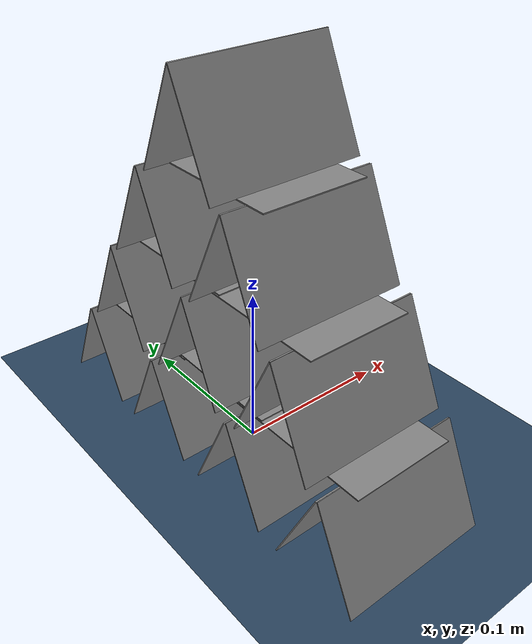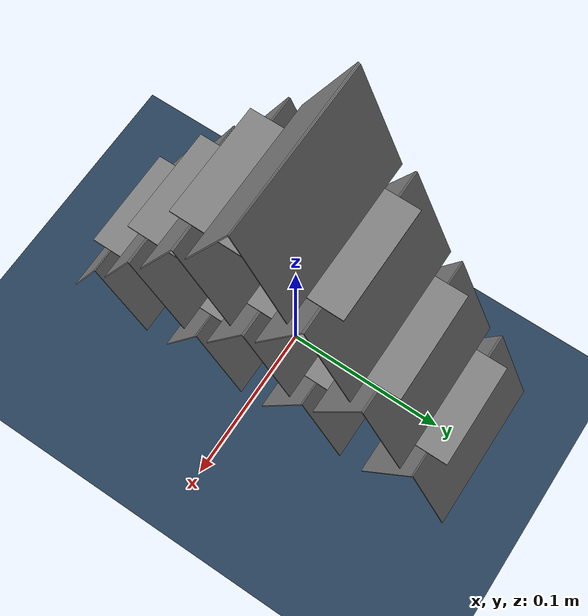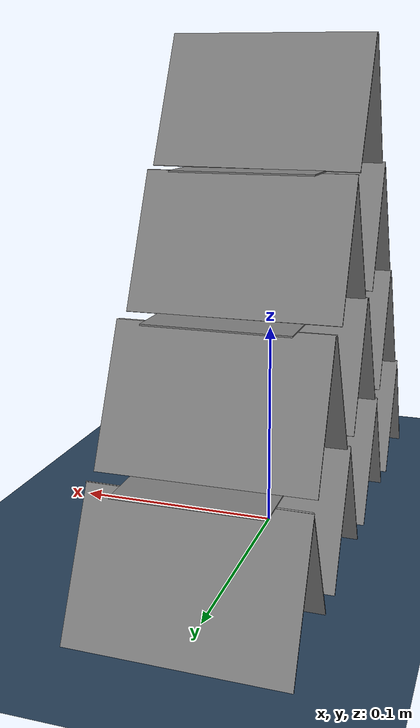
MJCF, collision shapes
<mujoco model="House of cards">
  <compiler assetdir="assets"/>

  <!-- meansize is hand-set: the heuristic sees card half-diagonals (~8cm),
       far coarser than the contact and gap scale of the model. -->
  <statistic extent="0.35" center="0 0 0.105" meansize=".01"/>

  <visual>
    <global azimuth="150" elevation="-15"/>
    <map force=".002"/>
  </visual>

  <!-- Frictional stability requires elliptic cones and large impratio. -->
  <option timestep="1e-3" integrator="implicitfast" density="1.225" viscosity="1.8e-5" cone="elliptic" impratio="10">
    <flag sleep="enable"/>
  </option>

  <asset>
    <texture name="ibl" type="cube" builtin="gradient" rgb1=".25 .3 .4" rgb2=".5 .45 .4" width="32" height="32"/>
    <texture type="skybox" builtin="gradient" rgb1=".08 .1 .16" rgb2=".25 .28 .33" width="32" height="512"/>
    <texture name="grid" type="2d" builtin="checker" rgb1=".1 .2 .3" rgb2=".2 .3 .4" width="100" height="100"/>
    <material name="grid" texture="grid" texrepeat="8 8" texuniform="true" reflectance="0.06"/>

    <mesh file="card.obj"/>

    <texture type="2d" file="ace_of_spades.png"/>
    <material name="ace_of_spades" texture="ace_of_spades"/>

    <texture type="2d" file="ace_of_hearts.png"/>
    <material name="ace_of_hearts" texture="ace_of_hearts"/>

    <texture type="2d" file="ace_of_clubs.png"/>
    <material name="ace_of_clubs" texture="ace_of_clubs"/>

    <texture type="2d" file="ace_of_diamonds.png"/>
    <material name="ace_of_diamonds" texture="ace_of_diamonds"/>

    <texture type="2d" file="king_of_spades.png"/>
    <material name="king_of_spades" texture="king_of_spades"/>

    <texture type="2d" file="king_of_hearts.png"/>
    <material name="king_of_hearts" texture="king_of_hearts"/>

    <texture type="2d" file="king_of_clubs.png"/>
    <material name="king_of_clubs" texture="king_of_clubs"/>

    <texture type="2d" file="king_of_diamonds.png"/>
    <material name="king_of_diamonds" texture="king_of_diamonds"/>

    <texture type="2d" file="10_of_spades.png"/>
    <material name="10_of_spades" texture="10_of_spades"/>

    <texture type="2d" file="10_of_hearts.png"/>
    <material name="10_of_hearts" texture="10_of_hearts"/>

    <texture type="2d" file="10_of_diamonds.png"/>
    <material name="10_of_diamonds" texture="10_of_diamonds"/>

    <texture type="2d" file="queen_of_spades.png"/>
    <material name="queen_of_spades" texture="queen_of_spades"/>

    <texture type="2d" file="queen_of_hearts.png"/>
    <material name="queen_of_hearts" texture="queen_of_hearts"/>

    <texture type="2d" file="queen_of_clubs.png"/>
    <material name="queen_of_clubs" texture="queen_of_clubs"/>

    <texture type="2d" file="queen_of_diamonds.png"/>
    <material name="queen_of_diamonds" texture="queen_of_diamonds"/>

    <texture type="2d" file="jack_of_spades.png"/>
    <material name="jack_of_spades" texture="jack_of_spades"/>

    <texture type="2d" file="jack_of_hearts.png"/>
    <material name="jack_of_hearts" texture="jack_of_hearts"/>

    <texture type="2d" file="9_of_spades.png"/>
    <material name="9_of_spades" texture="9_of_spades"/>

    <texture type="2d" file="9_of_hearts.png"/>
    <material name="9_of_hearts" texture="9_of_hearts"/>

    <texture type="2d" file="jack_of_clubs.png"/>
    <material name="jack_of_clubs" texture="jack_of_clubs"/>

    <texture type="2d" file="jack_of_diamonds.png"/>
    <material name="jack_of_diamonds" texture="jack_of_diamonds"/>

    <texture type="2d" file="8_of_spades.png"/>
    <material name="8_of_spades" texture="8_of_spades"/>

    <texture type="2d" file="8_of_hearts.png"/>
    <material name="8_of_hearts" texture="8_of_hearts"/>

    <texture type="2d" file="7_of_spades.png"/>
    <material name="7_of_spades" texture="7_of_spades"/>

    <texture type="2d" file="black_joker.png"/>
    <material name="black_joker" texture="black_joker"/>

    <texture type="2d" file="red_joker.png"/>
    <material name="red_joker" texture="red_joker"/>
  </asset>

  <default>
    <geom friction="0.7" solref="0.005 1" solimp="0.95 0.99 1e-4"/>
    <default class="card">
      <geom type="mesh" mesh="card" mass="2e-3" contype="0" conaffinity="0"/>
    </default>
    <default class="collision">
      <geom type="box" size="0.047 0.032 0.00035" mass="0" group="3"/>
    </default>
  </default>

  <worldbody>
    <light cutoff="40" pos="0 1 1" dir="0 -1 -2" ambient=".2 .2 .2" softness="1" intensity="150000"/>
    <light cutoff="40" pos="0 -1 1" dir="0 1 -2" softness="1" intensity="60000"/>
    <light type="image" texture="ibl" intensity="7500"/>

    <geom type="plane" size="1.5 1.5 .01" material="grid"/>

    <!-- Level 1: 4 leaning pairs, apexes at y = -0.105, -0.035, 0.035, 0.105. -->
    <body name="ace_of_spades" pos="0.0002 -0.11875 0.029" quat="0.843388 0.537298 -0.00145353 0.00228159">
      <freejoint/>
      <geom class="card" material="ace_of_spades"/>
      <geom class="collision"/>
    </body>

    <body name="ace_of_hearts" pos="-0.0001 -0.09125 0.029" quat="0.84339 -0.537298 -0.00112532 -0.00176639">
      <freejoint/>
      <geom class="card" material="ace_of_hearts"/>
      <geom class="collision"/>
    </body>

    <body name="ace_of_clubs" pos="0.0003 -0.04875 0.029" quat="0.843391 0.537299 -0.0007971 0.0012512">
      <freejoint/>
      <geom class="card" material="ace_of_clubs"/>
      <geom class="collision"/>
    </body>

    <body name="ace_of_diamonds" pos="-0.0002 -0.02125 0.029" quat="0.843388 -0.537297 -0.00154731 -0.00242879">
      <freejoint/>
      <geom class="card" material="ace_of_diamonds"/>
      <geom class="collision"/>
    </body>

    <body name="king_of_spades" pos="0.0001 0.02125 0.029" quat="0.843389 0.537298 -0.00121909 0.00191359">
      <freejoint/>
      <geom class="card" material="king_of_spades"/>
      <geom class="collision"/>
    </body>

    <body name="king_of_hearts" pos="-0.0003 0.04875 0.029" quat="0.84339 -0.537299 -0.000890876 -0.0013984">
      <freejoint/>
      <geom class="card" material="king_of_hearts"/>
      <geom class="collision"/>
    </body>

    <body name="king_of_clubs" pos="0.0002 0.09125 0.029" quat="0.84339 0.537299 -0.00103154 0.00161919">
      <freejoint/>
      <geom class="card" material="king_of_clubs"/>
      <geom class="collision"/>
    </body>

    <body name="king_of_diamonds" pos="-0.0002 0.11875 0.029" quat="0.843389 -0.537298 -0.00135976 -0.00213439">
      <freejoint/>
      <geom class="card" material="king_of_diamonds"/>
      <geom class="collision"/>
    </body>

    <!-- Level 1 deck: flat cards spanning the apexes, odd cards bridge on their neighbors. -->
    <body name="10_of_spades" pos="-0.0001 -0.07 0.05848" quat="0.706181 0 0 0.708032">
      <freejoint/>
      <geom class="card" material="10_of_spades"/>
      <geom class="collision"/>
    </body>

    <body name="10_of_hearts" pos="0.0003 0 0.05928" quat="0.708771 0 0 0.705439">
      <freejoint/>
      <geom class="card" material="10_of_hearts"/>
      <geom class="collision"/>
    </body>

    <body name="10_of_diamonds" pos="-0.0003 0.07 0.05848" quat="0.70581 0 0 0.708401">
      <freejoint/>
      <geom class="card" material="10_of_diamonds"/>
      <geom class="collision"/>
    </body>

    <!-- Level 2: 3 leaning pairs, apexes at y = -0.07, 0, 0.07. -->
    <body name="queen_of_spades" pos="0.0001 -0.08375 0.08855" quat="0.84339 0.537299 0.000843988 -0.0013248">
      <freejoint/>
      <geom class="card" material="queen_of_spades"/>
      <geom class="collision"/>
    </body>

    <body name="queen_of_hearts" pos="0.0002 -0.05625 0.08855" quat="0.843388 -0.537298 0.00150042 0.00235519">
      <freejoint/>
      <geom class="card" material="queen_of_hearts"/>
      <geom class="collision"/>
    </body>

    <body name="queen_of_clubs" pos="-0.0002 -0.01375 0.08855" quat="0.843389 0.537298 0.0011722 -0.00183999">
      <freejoint/>
      <geom class="card" material="queen_of_clubs"/>
      <geom class="collision"/>
    </body>

    <body name="queen_of_diamonds" pos="0.0001 0.01375 0.08855" quat="0.843389 -0.537298 0.00131287 0.00206079">
      <freejoint/>
      <geom class="card" material="queen_of_diamonds"/>
      <geom class="collision"/>
    </body>

    <body name="jack_of_spades" pos="-0.0001 0.05625 0.08855" quat="0.843391 0.537299 0.000750212 -0.0011776">
      <freejoint/>
      <geom class="card" material="jack_of_spades"/>
      <geom class="collision"/>
    </body>

    <body name="jack_of_hearts" pos="0.0003 0.08375 0.08855" quat="0.84339 -0.537299 0.00107843 0.00169279">
      <freejoint/>
      <geom class="card" material="jack_of_hearts"/>
      <geom class="collision"/>
    </body>

    <!-- Level 2 deck: flat cards spanning the apexes, odd cards bridge on their neighbors. -->
    <body name="9_of_spades" pos="-0.0003 -0.035 0.11803" quat="0.709017 0 0 0.705191">
      <freejoint/>
      <geom class="card" material="9_of_spades"/>
      <geom class="collision"/>
    </body>

    <body name="9_of_hearts" pos="0.0002 0.035 0.11883" quat="0.705933 0 0 0.708278">
      <freejoint/>
      <geom class="card" material="9_of_hearts"/>
      <geom class="collision"/>
    </body>

    <!-- Level 3: 2 leaning pairs, apexes at y = -0.035, 0.035. -->
    <body name="jack_of_clubs" pos="-0.0001 -0.04875 0.1481" quat="0.84339 0.537299 0.00103154 -0.00161919">
      <freejoint/>
      <geom class="card" material="jack_of_clubs"/>
      <geom class="collision"/>
    </body>

    <body name="jack_of_diamonds" pos="-0.0002 -0.02125 0.1481" quat="0.843389 -0.537298 0.00140665 0.00220799">
      <freejoint/>
      <geom class="card" material="jack_of_diamonds"/>
      <geom class="collision"/>
    </body>

    <body name="8_of_spades" pos="0.0001 0.02125 0.1481" quat="0.843391 0.537299 0.0007971 -0.0012512">
      <freejoint/>
      <geom class="card" material="8_of_spades"/>
      <geom class="collision"/>
    </body>

    <body name="8_of_hearts" pos="-0.0003 0.04875 0.1481" quat="0.843389 -0.537298 0.0011722 0.00183999">
      <freejoint/>
      <geom class="card" material="8_of_hearts"/>
      <geom class="collision"/>
    </body>

    <!-- Level 3 deck: flat cards spanning the apexes, odd cards bridge on their neighbors. -->
    <body name="7_of_spades" pos="0.0003 0 0.17758" quat="0.708832 0 0 0.705377">
      <freejoint/>
      <geom class="card" material="7_of_spades"/>
      <geom class="collision"/>
    </body>

    <body name="black_joker" pos="-0.0001 -0.01375 0.20685" euler="65 0 0.5">
      <freejoint/>
      <geom class="card" material="black_joker"/>
      <geom class="collision"/>
    </body>

    <body name="red_joker" pos="0.0002 0.01375 0.20685" euler="-65 0 -0.5">
      <freejoint/>
      <geom class="card" material="red_joker"/>
      <geom class="collision"/>
    </body>
  </worldbody>
</mujoco>
